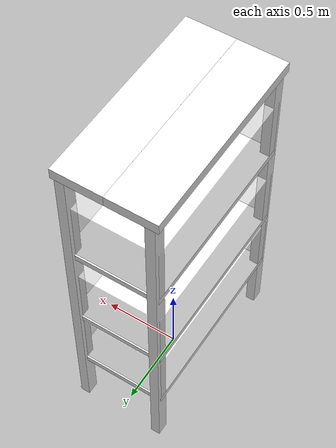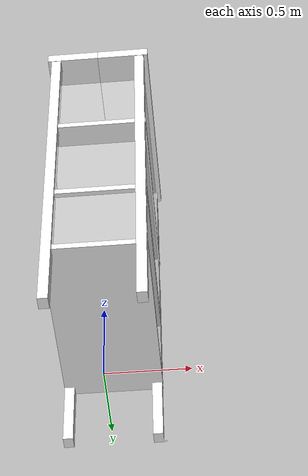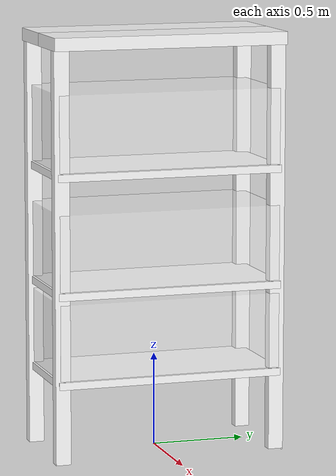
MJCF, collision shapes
<mujoco model="shelf_a12">
  <default>
    <default class="visual">
      <geom group="1" type="mesh" contype="0" conaffinity="0" density="100"/>
    </default>
    <default class="collision">
      <geom group="0" type="mesh" density="100" solimp="0.95 0.98 0.001" solref="0.004 1" rgba="1 1 1 0.25"/>
    </default>
    <default class="spawn">
      <geom group="0" rgba="1 1 1 0.5" contype="0" conaffinity="0" density="0" mass="0"/>
    </default>
  </default>
  <asset>
    <texture type="2d" name="Shelf_A12_Shelves" file="textures/Shelf_A12_Shelves.png"/>
    <material name="Shefl_A12_Shelves" texture="Shelf_A12_Shelves" specular="0.5" shininess="0.64"/>
    <texture type="2d" name="Shelf_A12_Poles" file="textures/Shelf_A12_Poles.png"/>
    <material name="Shelf_A12_Poles" texture="Shelf_A12_Poles" specular="0.5" shininess="0.25"/>
    <mesh file="meshes/shelf_a12_0.obj" name="shelf_a12_0"/>
    <mesh file="meshes/shelf_a12_1.obj" name="shelf_a12_1"/>
  </asset>
  <worldbody>
    <body>
      <body name="object">
        <geom mesh="shelf_a12_0" material="Shefl_A12_Shelves" class="visual"/>
        <geom mesh="shelf_a12_1" material="Shelf_A12_Poles" class="visual"/>
        <geom name="collider_box_02efb0bf" type="box" pos="0.0013450899999999939 0 0.42" size="0.02 0.3 0.608216275" quat="0.5 0.5 0.5 -0.5" class="collision"/>
        <geom name="collider_box_9d67299e" type="box" pos="0.001345500201015522 0 0.89" size="0.02 0.3 0.6077063541004534" quat="0.5 0.5 0.5 -0.5" class="collision"/>
        <geom name="collider_box_6e777308" type="box" pos="0.0013450899999999828 0 1.51" size="0.02 0.3 0.6081581249943651" quat="0.5 -0.5 -0.5 -0.5" class="collision"/>
        <geom name="collider_box_2da42924" type="box" pos="0.16048454499999998 0 2.19798714" size="0.034 0.160534095 0.62843143" quat="0.5 0.5 0.5 -0.5" class="collision"/>
        <geom name="collider_box_bb9caf5c" type="box" pos="-0.16053409500000002 0 2.197898165" size="0.034 0.160484545 0.62843143" quat="0.5 -0.5 0.5 0.5" class="collision"/>
        <geom name="collider_box_846d28b4" type="box" pos="-0.26697437500000004 0.58704646 1.1" size="0.03 0.04 1.1" class="collision"/>
        <geom name="collider_box_846d28b4_1" type="box" pos="0.26697437500000004 0.58704646 1.1" size="0.03 0.04 1.1" class="collision"/>
        <geom name="collider_box_846d28b4_2" type="box" pos="0.26697437500000004 -0.58704646 1.1" size="0.03 0.04 1.1" class="collision"/>
        <geom name="collider_box_846d28b4_3" type="box" pos="-0.26697437500000004 -0.58704646 1.1" size="0.03 0.04 1.1" class="collision"/>
        <geom class="spawn" size="0.3 0.6 0.2" type="box" pos="0 0 0.645" name="spawn_1"/>
        <geom class="spawn" size="0.3 0.6 0.2" type="box" pos="0 0 1.115" name="spawn_2"/>
        <geom class="spawn" size="0.3 0.6 0.2" type="box" pos="0 0 1.735" name="spawn_3"/>
      </body>
      <site name="bottom_site" pos="0 0 7.3e-05" rgba="1 1 1 0.5" size="0.005"/>
      <site name="top_site" pos="0 0 2.219827" rgba="1 1 1 0.5" size="0.005"/>
      <site name="horizontal_radius_site" pos="0.30881 0.616871 0" rgba="1 1 1 0.5" size="0.005"/>
    </body>
  </worldbody>
</mujoco>
